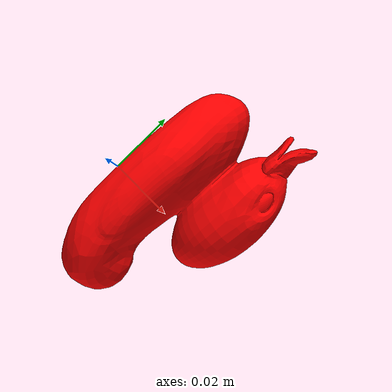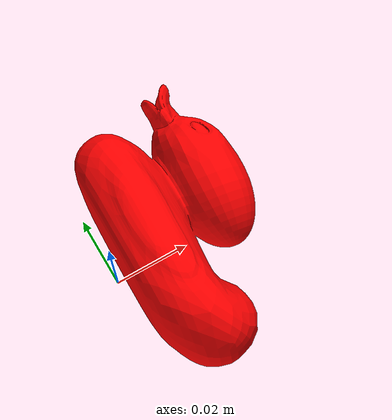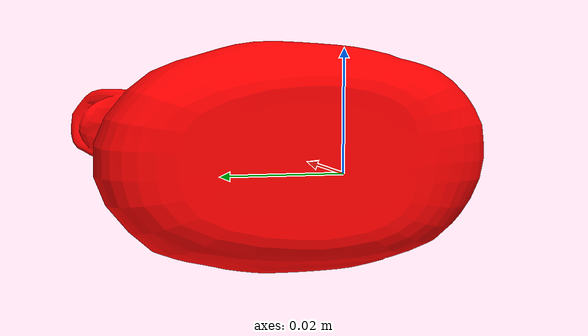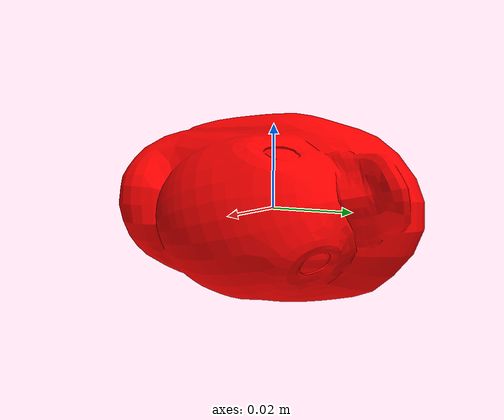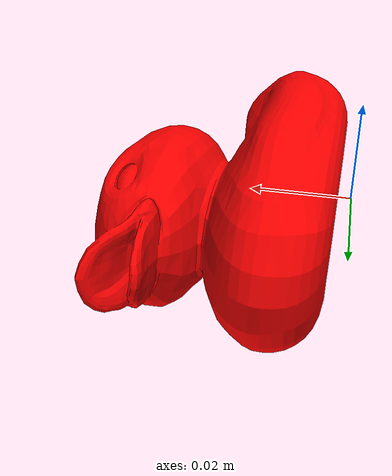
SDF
<?xml version="1.0" ?>
<sdf version="1.5">
  <model name="duck">
    <static>false</static>
    <link name="link">
      <pose>0 0 0 1.55 0 1.55</pose>
      <collision name="collision">
        <geometry>
          <mesh>
            <uri>model://duck/meshes/duck.dae</uri>
            <scale>0.1 0.1 0.1</scale>
          </mesh>
        </geometry>
      </collision>
      <visual name="visual">
        <geometry>
          <mesh>
            <uri>model://duck/meshes/duck.dae</uri>
            <scale>0.1 0.1 0.1</scale>
          </mesh>
        </geometry>
        <material>
          <ambient>1 0 0 1</ambient>
          <diffuse>1 0 0 1</diffuse>
          <specular>0.1 0.1 0.1 1</specular>
          <emissive>0 0 0 0</emissive>
        </material>
      </visual>
    </link>
  </model>
</sdf>
